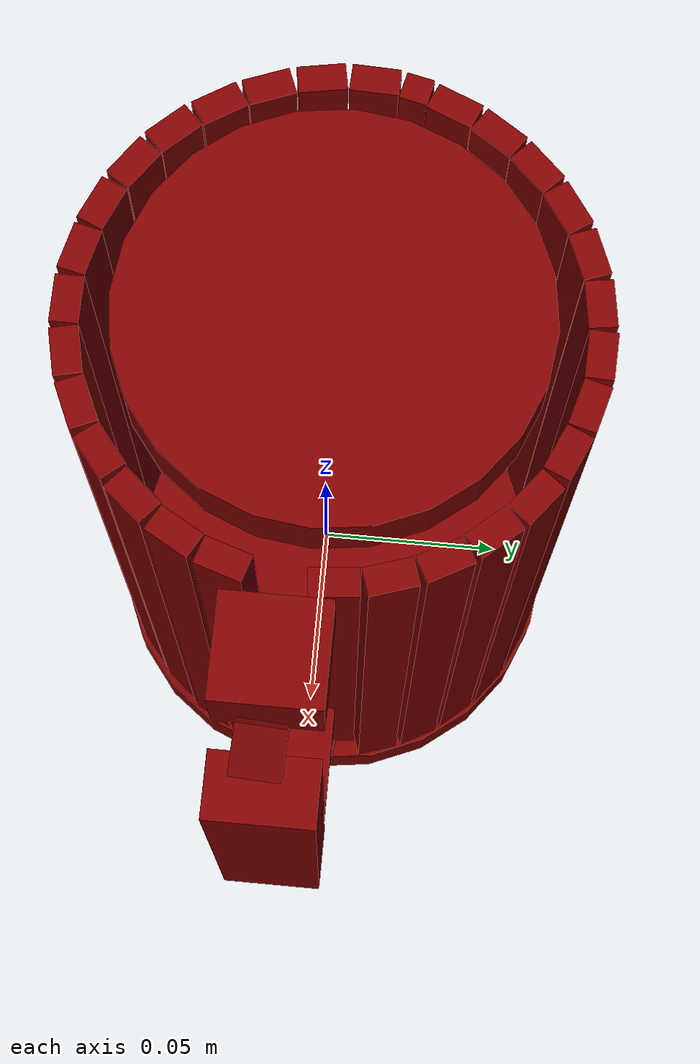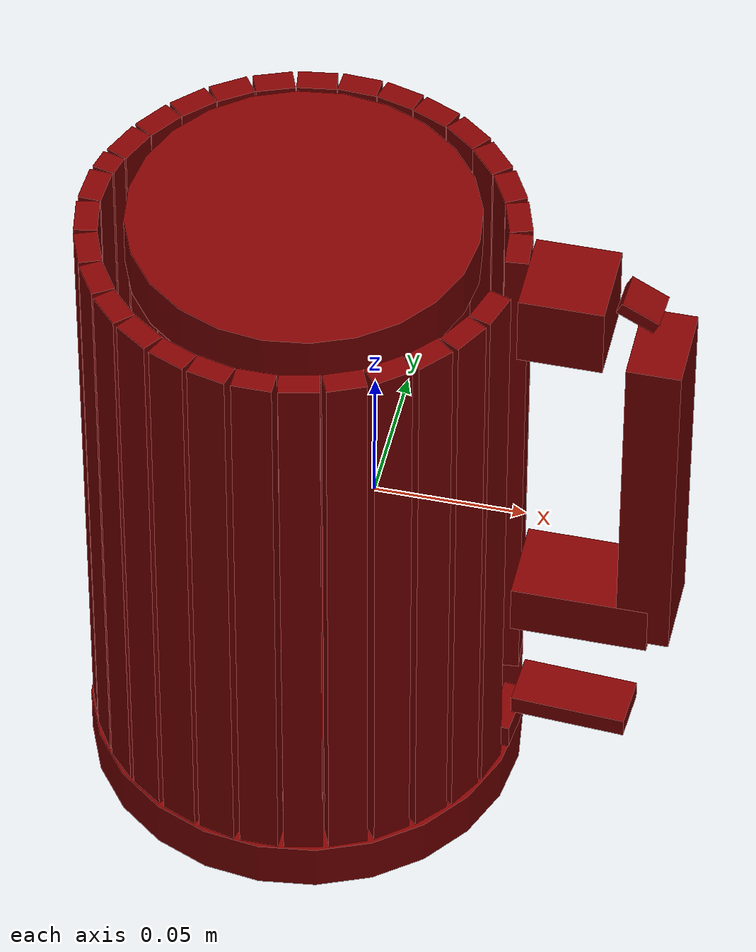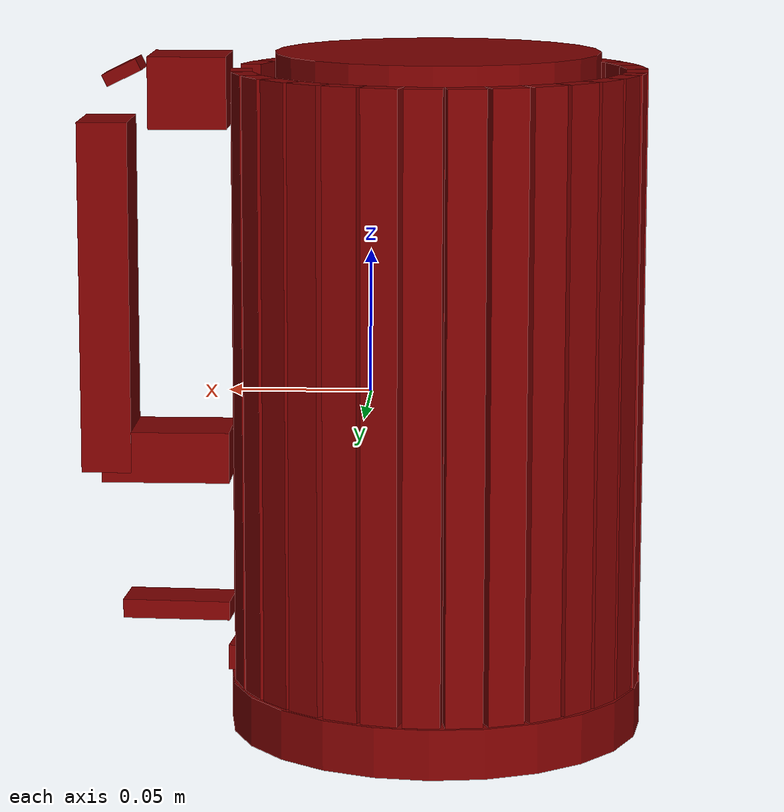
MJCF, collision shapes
<?xml version='1.0' encoding='UTF-8'?>
<mujoco model="model">
  <option timestep="0.002" gravity="0.0 0.0 -9.81"/>
  <compiler angle="radian"/>
  <asset>
    <mesh file="visuals/button_lid.obj" name="button_lid_vis"/>
    <mesh file="visuals/Body001.obj" name="Body001_vis"/>
    <mesh file="visuals/kettle_main.obj" name="kettle_main_vis"/>
    <mesh file="visuals/lid.obj" name="lid_vis"/>
    <mesh file="visuals/switch.obj" name="switch_vis"/>
    <texture file="visuals/T_BC001.png" name="Body001_material" type="2d"/>
    <material name="Body001_material" rgba="1 1 1 1.0" texture="Body001_material" shininess="0.3049962520599365" specular="0.3103448502657381"/>
    <texture file="visuals/T_BC001.png" name="kettle_main_material" type="2d"/>
    <material name="kettle_main_material" rgba="1 1 1 1.0" texture="kettle_main_material" shininess="0.3049962520599365" specular="0.3103448502657381"/>
    <texture file="visuals/T_BC001.png" name="button_lid_material" type="2d"/>
    <material name="button_lid_material" rgba="1 1 1 1.0" texture="button_lid_material" shininess="0.3049962520599365" specular="0.3103448502657381"/>
    <texture file="visuals/T_BC001.png" name="lid_material" type="2d"/>
    <material name="lid_material" rgba="1 1 1 1.0" texture="lid_material" shininess="0.3049962520599365" specular="0.3103448502657381"/>
    <texture file="visuals/T_BC001.png" name="switch_material" type="2d"/>
    <material name="switch_material" rgba="1 1 1 1.0" texture="switch_material" shininess="0.3049962520599365" specular="0.3103448502657381"/>
  </asset>
  <default>
    <default class="visual">
      <geom conaffinity="0" contype="0" group="1" type="mesh"/>
    </default>
    <default class="collision">
      <geom group="0" rgba="0.5 0 0 0.5" density="1.0" solref="0.004 1" solimp="0.998 0.998 0.001"/>
    </default>
    <default class="spawn">
      <geom group="0" rgba="1 1 1 0.5" contype="0" conaffinity="0"/>
      <site group="0" rgba="1 1 1 0.5"/>
    </default>
    <default class="region">
      <geom group="1" conaffinity="0" contype="0" rgba="0 1 0 0" mass="0"/>
    </default>
  </default>
  <worldbody>
    <body>
      <body name="object">
        <geom mesh="Body001_vis" type="mesh" solimp="0.998 0.998 0.001" solref="0.001 1" friction="0.95 0.3 0.1" class="visual" material="Body001_material"/>
        <geom type="cylinder" pos="-0.023023681715130806 -3.276069037383422e-05 -0.11071483790874481" size="0.07277010381221771 0.008798042312264442" quat="1.0 -8.146034957690063e-08 0.0 0.0" class="collision"/>
        <geom type="cylinder" pos="-0.023023683577775955 -3.2763189665274695e-05 -0.09461458027362823" size="0.01096278801560402 0.007078821305185556" quat="1.0 -8.146035668232798e-08 0.0 0.0" class="collision"/>
        <body name="kettle_main">
          <geom mesh="kettle_main_vis" type="mesh" solimp="0.998 0.998 0.001" solref="0.001 1" friction="0.95 0.3 0.1" class="visual" material="kettle_main_material"/>
          <geom type="box" pos="-0.023034879937767982 -0.06774058938026428 0.005778426770120859" size="0.006442265119403601 0.003759863320738077 0.10746723413467407" quat="1.0 0.0 0.0 0.0" class="collision"/>
          <geom type="box" pos="0.004113842733204365 -0.061874181032180786 0.005778426770120859" size="0.006442171521484852 0.003759845159947872 0.10746721923351288" quat="4.348970890077908e-07 0.20617415010929108 -0.9785153269767761 3.6727723085050457e-08" class="collision"/>
          <geom type="box" pos="-0.009210018441081047 -0.06623754650354385 0.005778426770120859" size="0.006442172918468714 0.003759845159947872 0.10746721923351288" quat="4.2588473547766625e-07 0.10693040490150452 -0.9942665100097656 9.05527670624906e-08" class="collision"/>
          <geom type="box" pos="0.01626894250512123 -0.05454995110630989 0.005778426770120859" size="0.006442171521484852 0.0037598456256091595 0.10746721923351288" quat="4.1167294284605305e-07 0.3320642411708832 -0.9432567954063416 1.349511933312897e-07" class="collision"/>
          <geom type="box" pos="0.026787778362631798 -0.04496612399816513 0.005778426770120859" size="0.006442171521484852 0.0037598456256091595 0.10746721923351288" quat="3.698584976064012e-07 0.41601479053497314 -0.9093578457832336 2.326648882444715e-07" class="collision"/>
          <geom type="box" pos="0.03528076782822609 -0.03377407789230347 0.005778426770120859" size="0.006442171987146139 0.0037598456256091595 0.10746721923351288" quat="4.2593117655087553e-07 0.5013291239738464 -0.865256667137146 1.2882948396963911e-07" class="collision"/>
          <geom type="box" pos="0.04107045754790306 -0.021115975454449654 0.005778426770120859" size="0.006442171987146139 0.0037598460912704468 0.10746721923351288" quat="3.0616217827628134e-07 0.5887382626533508 -0.8083237409591675 3.153313343773334e-07" class="collision"/>
          <geom type="box" pos="0.04581490531563759 -0.003122053574770689 -0.09600447863340378" size="0.009686942212283611 0.0037598449271172285 0.004450293257832527" quat="6.601773634429264e-07 0.6742482781410217 -0.7385047674179077 -8.070969670370687e-08" class="collision"/>
          <geom type="box" pos="0.044479336589574814 0.006276293192058802 0.01917729154229164" size="0.006442183628678322 0.0037598456256091595 0.09406835585832596" quat="-2.3746520128042903e-07 -0.7387588024139404 0.6739699244499207 -3.7231245642033173e-07" class="collision"/>
          <geom type="box" pos="0.041773878037929535 0.01991182379424572 0.005778426770120859" size="0.00644217012450099 0.0037598460912704468 0.10746721923351288" quat="2.7327934049026226e-07 0.8089416027069092 -0.5878890156745911 2.476132863193925e-07" class="collision"/>
          <geom type="box" pos="0.03625473007559776 0.03276817873120308 0.005778426770120859" size="0.006442171521484852 0.0037598449271172285 0.10746721923351288" quat="-3.189085973076544e-08 -0.8600682616233826 0.5101789236068726 -4.354070597401005e-07" class="collision"/>
          <geom type="box" pos="0.028138352558016777 0.04413112252950668 0.005778426770120859" size="0.006442170590162277 0.0037598460912704468 0.10746721923351288" quat="2.397534046849614e-07 0.9088814854621887 -0.41705453395843506 3.4146498251175217e-07" class="collision"/>
          <geom type="box" pos="0.01823635958135128 0.05381667613983154 0.005778426770120859" size="0.0064421710558235645 0.0037598456256091595 0.10746721923351288" quat="2.0099133735129726e-07 0.9453177452087402 -0.3261508345603943 3.5107305507153796e-07" class="collision"/>
          <geom type="box" pos="0.006151964422315359 0.06094106286764145 0.005778426770120859" size="0.0064421710558235645 0.0037598449271172285 0.10746721923351288" quat="1.5426923027916928e-07 0.9778256416320801 -0.20942065119743347 3.5980457369078067e-07" class="collision"/>
          <geom type="box" pos="-0.0066388617269694805 0.06565307825803757 0.005778426770120859" size="0.006442171987146139 0.0037598449271172285 0.10746721923351288" quat="1.2839826979416102e-07 0.9908782243728638 -0.13476020097732544 3.838607085526746e-07" class="collision"/>
          <geom type="box" pos="-0.020278898999094963 0.06771973520517349 0.005778426770120859" size="0.006442171987146139 0.0037598456256091595 0.10746721923351288" quat="2.0403221867582033e-07 0.9997295141220093 -0.023256521672010422 3.98591481598487e-07" class="collision"/>
          <geom type="box" pos="-0.034031666815280914 0.06678034365177155 0.005778426770120859" size="0.0064421710558235645 0.0037598449271172285 0.10746721923351288" quat="1.0381260295844186e-07 -0.9973849654197693 -0.07227186858654022 -3.880241763454251e-07" class="collision"/>
          <geom type="box" pos="-0.047371089458465576 0.06317306309938431 0.005778426770120859" size="0.006442171987146139 0.003759845159947872 0.10746721923351288" quat="1.935909432759786e-09 0.9829936027526855 0.1836397647857666 4.007569600616989e-07" class="collision"/>
          <geom type="box" pos="-0.059733547270298004 0.056822746992111206 0.005778426770120859" size="0.0064421710558235645 0.0037598456256091595 0.10746721923351288" quat="-4.064979108875377e-08 0.9561119079589844 0.29300183057785034 3.903171830188512e-07" class="collision"/>
          <geom type="box" pos="-0.07036751508712769 0.04821787774562836 0.005778426770120859" size="0.006442171987146139 0.0037598456256091595 0.10746721923351288" quat="3.3606863780732965e-07 -0.9239467978477478 -0.3825210630893707 -3.0273454854068405e-07" class="collision"/>
          <geom type="box" pos="-0.07916026562452316 0.03773421421647072 0.005778426770120859" size="0.006442171987146139 0.0037598460912704468 0.10746721923351288" quat="-1.2643120328448276e-07 0.8839080333709717 0.4676608145236969 4.004001254998002e-07" class="collision"/>
          <geom type="box" pos="-0.08581119775772095 0.025785086676478386 0.005778426770120859" size="0.006442171987146139 0.0037598460912704468 0.10746721923351288" quat="4.767065604482923e-07 -0.8366203308105469 -0.5477831959724426 -1.5499915662076091e-07" class="collision"/>
          <geom type="box" pos="-0.0369294248521328 -0.06624718010425568 0.005778426770120859" size="0.006442171987146139 0.0037598456256091595 0.10746721923351288" quat="4.3108633462907164e-07 -0.11771966516971588 -0.9930468797683716 -4.278658849443673e-08" class="collision"/>
          <geom type="box" pos="-0.05002386122941971 -0.06213487312197685 0.005778426770120859" size="0.006442171987146139 0.0037598456256091595 0.10746721923351288" quat="4.169533269759995e-07 -0.2019345611333847 -0.9793990254402161 -1.226243568908103e-07" class="collision"/>
          <geom type="box" pos="-0.062256887555122375 -0.05527814105153084 0.005778426770120859" size="0.006442171521484852 0.0037598456256091595 0.10746721923351288" quat="4.2050552906403027e-07 -0.3024821877479553 -0.9531550407409668 -1.0684530593607633e-07" class="collision"/>
          <geom type="box" pos="-0.07269997149705887 -0.04629600793123245 0.005778426770120859" size="0.006442171987146139 0.0037598456256091595 0.10746721923351288" quat="4.162581888067507e-07 -0.39777764678001404 -0.9174818396568298 -1.2875644017640298e-07" class="collision"/>
          <geom type="box" pos="-0.08097868412733078 -0.03514047712087631 0.005778426770120859" size="0.006442171987146139 0.0037598449271172285 0.10746721923351288" quat="3.63392075541924e-07 -0.4836215674877167 -0.8752772212028503 -2.3790701675352466e-07" class="collision"/>
          <geom type="box" pos="-0.0870208740234375 -0.02278553694486618 0.005778426770120859" size="0.006442170590162277 0.0037598456256091595 0.10746721923351288" quat="3.371456500644854e-07 -0.5654937028884888 -0.8247526288032532 -2.742099809438514e-07" class="collision"/>
          <geom type="box" pos="-0.09076343476772308 -0.009258224628865719 0.005778426770120859" size="0.00644217012450099 0.0037598449271172285 0.10746721923351288" quat="3.715065304277232e-07 -0.6412659883499146 -0.7673186659812927 -2.3088995249054278e-07" class="collision"/>
          <geom type="box" pos="-0.091529980301857 0.004629814065992832 0.005778426770120859" size="0.006442172918468714 0.0037598460912704468 0.10746721923351288" quat="1.5400815982502536e-06 -0.7232064008712769 -0.6906319856643677 9.131218234870175e-07" class="collision"/>
          <geom type="box" pos="-0.08988972008228302 0.015556933358311653 0.005778426770120859" size="0.003726500552147627 0.003759845159947872 0.10746721923351288" quat="3.066882356961287e-07 -0.7830078601837158 -0.6220118403434753 -2.646917209858657e-07" class="collision"/>
          <geom class="collision" type="box" pos="0.07228168845176697 -0.007208599708974361 -0.023526757955551147" size="0.022511886432766914 0.014028203673660755 0.009019003249704838" quat="1.0 0.0 0.0 0.0" name="handle_2"/>
          <geom class="collision" type="box" pos="0.06340934336185455 -0.007028752472251654 0.1050092801451683" size="0.013639543205499649 0.014208050444722176 0.012554212473332882" quat="1.0 0.0 0.0 0.0" name="handle_1"/>
          <geom class="collision" type="box" pos="0.09318245202302933 -0.007028752472251654 0.032909683883190155" size="0.008785214275121689 0.014208050444722176 0.06187383458018303" quat="1.0 0.0 0.0 0.0" name="handle_main"/>
          <geom type="cylinder" pos="-0.023023681715130806 -3.2762927730800584e-05 -0.08451682329177856" size="0.06519468128681183 0.0024326383136212826" quat="1.0 -8.146034957690063e-08 0.0 0.0" class="collision"/>
          <body name="button_lid">
            <joint axis="0.0 0.0 -1.0" pos="0.08598235994577408 -0.007813122123479843 0.11077475547790527" limited="true" name="button_lid_joint" range="0.0 0.003" type="slide" damping="1" frictionloss="1" armature=".01" stiffness="0.05" springref="-1"/>
            <geom mesh="button_lid_vis" type="mesh" solimp="0.998 0.998 0.001" solref="0.001 1" friction="0.95 0.3 0.1" class="visual" material="button_lid_material"/>
            <geom class="collision" type="box" pos="0.08664640039205551 -0.0077461921609938145 0.11139235645532608" size="0.0066857365891337395 0.006490183062851429 0.002256079576909542" quat="0.974043607711792 -0.006441202480345964 0.22453691065311432 -0.027941647917032242" name="button_lid_main"/>
          </body>
          <body name="lid">
            <joint axis="0.0 1.0 0.0" pos="0.05128675326704979 -0.005694232415407896 0.11794690042734146" limited="true" name="lid_joint" range="0.0 1.5707963267948966" type="hinge" damping="1" frictionloss="0.1" armature=".01" stiffness="0.05" springref="-6"/>
            <geom mesh="lid_vis" type="mesh" solimp="0.998 0.998 0.001" solref="0.001 1" friction="0.95 0.3 0.1" class="visual" material="lid_material"/>
            <geom class="collision" type="cylinder" pos="-0.023023681715130806 -3.276173447375186e-05 0.11038882285356522" size="0.05626484543085098 0.008939066901803017" quat="1.0 -8.146034247147327e-08 0.0 0.0" name="lid_main"/>
          </body>
          <body name="switch">
            <joint axis="0.0 1.0 0.0" pos="0.04257040470838547 -0.004330241121351719 -0.07976800948381424" limited="true" name="switch_joint" range="0.0 0.2617993877991494" type="hinge" damping="1" frictionloss="1" armature=".01" stiffness="0.05" springref="-1"/>
            <geom mesh="switch_vis" type="mesh" solimp="0.998 0.998 0.001" solref="0.001 1" friction="0.95 0.3 0.1" class="visual" material="switch_material"/>
            <geom class="collision" type="box" pos="0.06879474222660065 -0.005083506926894188 -0.07952968031167984" size="0.019173555076122284 0.00886817742139101 0.0033816301729530096" quat="0.9995887875556946 -8.142684748690954e-08 2.3358253109506677e-09 -0.02867441438138485" name="switch_main"/>
          </body>
        </body>
        <geom class="region" name="reg_main" type="box" pos="-1.6763806343078613e-08 1.862645149230957e-09 3.725290298461914e-09" size="0.10380673205852509 0.07396589761972427 0.12052702701091766"/>
      </body>
    </body>
  </worldbody>
  <actuator>
    <motor name="button_lid_joint_actuator" joint="button_lid_joint" gear="0.5"/>
    <motor name="lid_joint_actuator" joint="lid_joint" gear="0.5"/>
    <motor name="switch_joint_actuator" joint="switch_joint" gear="0.5"/>
  </actuator>
</mujoco>
